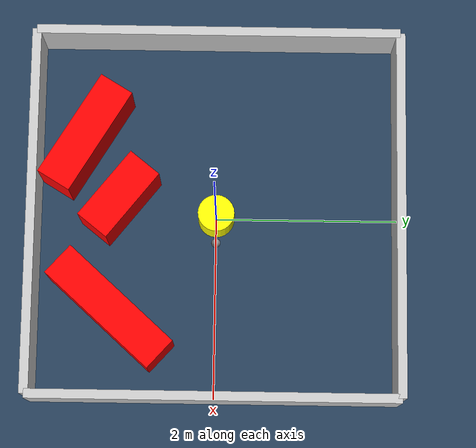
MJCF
<?xml version="1.0" ?>
<mujoco model="generated_environment">
  <option timestep="0.01" integrator="RK4" cone="elliptic"/>
  <default>
    <geom density="1"/>
  </default>
  <asset>
    <texture builtin="gradient" height="3072" rgb1="0.3 0.5 0.7" rgb2="0 0 0" type="skybox" width="512"/>
    <texture builtin="checker" height="300" mark="edge" markrgb="0.8 0.8 0.8" name="groundplane" rgb1="0.2 0.3 0.4" rgb2="0.1 0.2 0.3" type="2d" width="300"/>
    <material name="groundplane" reflectance="0.2" texrepeat="5 5" texture="groundplane" texuniform="true"/>
    <material name="robot" rgba="0.0 1.0 0.0 1"/>
  </asset>
  <worldbody>
    <light dir="0 0 -1" directional="true" pos="0 0 1.5"/>
    <geom condim="4" friction="1.0 0.005 0.001" material="groundplane" name="floor" size="0 0 0.05" type="plane"/>
    <body name="walls">
      <geom name="wall_1" condim="4" pos="-2.0 0.0 0.3" rgba="0.800000011920929 0.800000011920929 0.800000011920929 1.0" size="0.05 2.0 0.3" type="box"/>
      <geom name="wall_2" condim="4" pos="2.0 0.0 0.3" rgba="0.800000011920929 0.800000011920929 0.800000011920929 1.0" size="0.05 2.0 0.3" type="box"/>
      <geom name="wall_3" condim="4" pos="0.0 -2.0 0.3" rgba="0.800000011920929 0.800000011920929 0.800000011920929 1.0" size="2.0 0.05 0.3" type="box"/>
      <geom name="wall_4" condim="4" pos="0.0 2.0 0.3" rgba="0.800000011920929 0.800000011920929 0.800000011920929 1.0" size="2.0 0.05 0.3" type="box"/>
    </body>
    <body name="robot">
      <joint name="joint_x" type="slide" pos="0 0 0" axis="1 0 0"/>
      <joint name="joint_y" type="slide" pos="0 0 0" axis="0 1 0"/>
      <geom name="robot" type="sphere" pos="0.3 0.0 0.2" size="0.05" mass="5." friction="1.0 0.005 0.0001" condim="4" rgba="0.5 0.5 0.5 1.0"/>
      <site name="sensor_ball"/>
    </body>
    <body name="obstacle_movable_1">
      <geom name="obstacle_movable_1" condim="4" pos="0.0 0.0 0.2" euler="0 0 0.0" friction="1.0 0.005 0.001" rgba="1.0 1.0 0.0 1.0" size="0.2 0.2 0.0" type="cylinder" mass="0.1"/>
      <joint type="free"/>
    </body>
    <body name="obstacle_2_static">
      <geom name="obstacle_2_static" condim="4" pos="-0.1577749474953447 -1.0554466405135003 0.3" euler="0 0 321.4687590170483" friction="1.0 0.005 0.001" rgba="1 0 0 1" size="0.4476303344028453 0.2 0.3" type="box"/>
    </body>
    <body name="obstacle_3_static">
      <geom name="obstacle_3_static" condim="4" pos="1.064174485229589 -1.1299040291841682 0.3" euler="0 0 47.87811351765435" friction="1.0 0.005 0.001" rgba="1 0 0 1" size="0.7523398771115523 0.2 0.3" type="box"/>
    </body>
    <body name="obstacle_4_static">
      <geom name="obstacle_4_static" condim="4" pos="-0.8410215158597241 -1.4368794979346613 0.3" euler="0 0 148.7736977883299" friction="1.0 0.005 0.001" rgba="1 0 0 1" size="0.6366052172210144 0.2 0.3" type="box"/>
    </body>
  </worldbody>
  <actuator>
    <motor name="actuator_x" joint="joint_x" gear="1" ctrlrange="-1 1"/>
    <motor name="actuator_y" joint="joint_y" gear="1" ctrlrange="-1 1"/>
  </actuator>
</mujoco>
